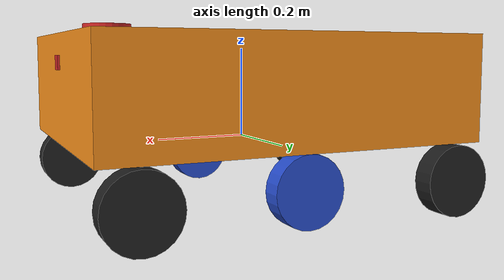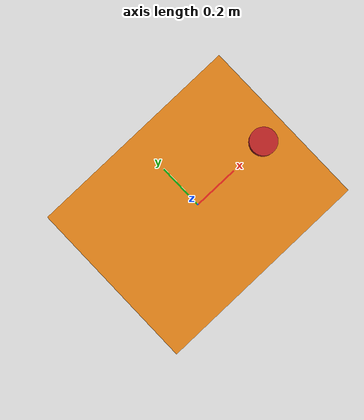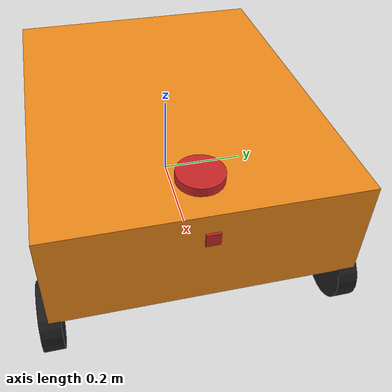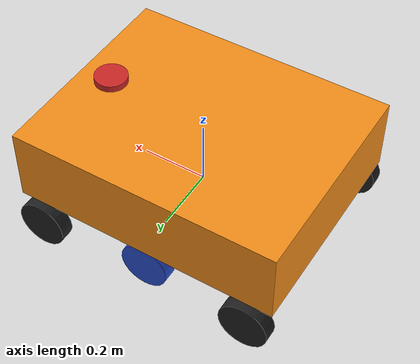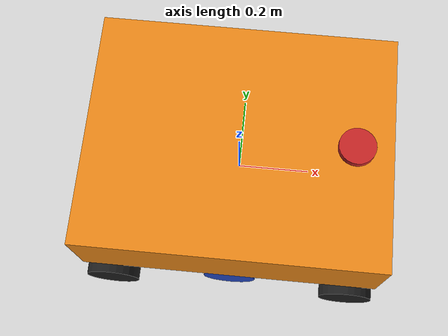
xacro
<?xml version="1.0"?>
<robot xmlns:xacro="http://www.ros.org/wiki/xacro" name="robot">

    <xacro:include filename="robot_core.xacro" />

    <xacro:arg name="use_ros2_control" default="true" />
    <xacro:arg name="sim_mode" default="false" />

    <xacro:if value="$(arg use_ros2_control)">
        <xacro:include filename="ros2_control.xacro" />
    </xacro:if>
    <xacro:unless value="$(arg use_ros2_control)">
        <xacro:include filename="gazebo_control.xacro" />
    </xacro:unless>

    <xacro:include filename="lidar.xacro" />
    <xacro:include filename="camera.xacro" />

</robot>

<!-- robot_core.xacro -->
<robot xmlns:xacro="http://www.ros.org/wiki/xacro">

    <xacro:include filename="colors.xacro" />
    <xacro:include filename="inertial_macros.xacro" />

    <!-- BASE LINK -->

    <link name="base_link">

    </link>

    <!-- BASE_FOOTPRINT LINK -->

    <joint name="base_footprint_joint" type="fixed">
        <parent link="base_link" />
        <child link="base_footprint" />
        <origin xyz="0 0 0" rpy="0 0 0" />
    </joint>

    <link name="base_footprint">
    </link>

    <!-- CHASSIS LINK -->

    <joint name="chassis_joint" type="fixed">
        <parent link="base_link" />
        <child link="chassis" />
        <origin xyz="-0.41 0 0" />
    </joint>

    <link name="chassis">
        <visual>
            <origin xyz="0.41 0 0.115" />
            <geometry>
                <box size="0.82 0.65 0.23" />
            </geometry>
            <material name="orange" />
        </visual>
        <collision>
            <origin xyz="0.41 0 0.115" />
            <geometry>
                <box size="0.82 0.65 0.23" />
            </geometry>
        </collision>
        <xacro:inertial_box mass="0.5" x="0.3" y="0.3" z="0.15">
            <origin xyz="0.15 0 0.075" rpy="0 0 0" />
        </xacro:inertial_box>
    </link>

    <gazebo reference="chassis">
        <material>Gazebo/Orange</material>
    </gazebo>

    <!-- LEFT WHEEL LINK -->

    <joint name="left_wheel_joint" type="continuous">
        <parent link="base_link" />
        <child link="left_wheel" />
        <origin xyz="0 0.295 -0.075" rpy="-${pi/2} 0 0" />
        <axis xyz="0 0 1" />
    </joint>

    <link name="left_wheel">
        <visual>
            <geometry>
                <cylinder radius="0.074" length="0.045" />
            </geometry>
            <material name="blue" />
        </visual>
        <collision>
            <geometry>
                <sphere radius="0.074" />
            </geometry>
        </collision>
        <xacro:inertial_cylinder mass="0.1" length="0.045" radius="0.074">
            <origin xyz="0 0 0" rpy="0 0 0" />
        </xacro:inertial_cylinder>
    </link>

    <gazebo reference="left_wheel">
        <material>Gazebo/Blue</material>
    </gazebo>

    <!-- RIGHT WHEEL LINK -->

    <joint name="right_wheel_joint" type="continuous">
        <parent link="base_link" />
        <child link="right_wheel" />
        <origin xyz="0 -0.295 -0.075" rpy="${pi/2} 0 0" />
        <axis xyz="0 0 -1" />
    </joint>

    <link name="right_wheel">
        <visual>
            <geometry>
                <cylinder radius="0.074" length="0.045" />
            </geometry>
            <material name="blue" />
        </visual>
        <collision>
            <geometry>
                <sphere radius="0.074" />
            </geometry>
        </collision>
        <xacro:inertial_cylinder mass="0.1" length="0.045" radius="0.074">
            <origin xyz="0 0 0" rpy="0 0 0" />
        </xacro:inertial_cylinder>
    </link>

    <gazebo reference="right_wheel">
        <material>Gazebo/Blue</material>
    </gazebo>

    <!-- CASTER WHEEL LINK FRONT LEFT-->

    <joint name="caster_wheel_joint_FL" type="fixed">
        <parent link="chassis" />
        <child link="caster_wheel_fl" />
        <origin xyz="0.745 0.325 -0.075" rpy="-${pi/2} 0 0" />
    </joint>

    <link name="caster_wheel_fl">
        <visual>
            <geometry>
                <cylinder radius="0.075" length="0.045" />
            </geometry>
            <material name="black" />
        </visual>
        <collision>
            <geometry>
                <sphere radius="0.075" />
            </geometry>
        </collision>
        <xacro:inertial_cylinder mass="0.1" length="0.045" radius="0.075">
            <origin xyz="0 0 0" rpy="0 0 0" />
        </xacro:inertial_cylinder>
    </link>

    <gazebo reference="caster_wheel_fl">
        <material>Gazebo/Black</material>
        <mu1 value="0.001" />
        <mu2 value="0.001" />
    </gazebo>

    <!-- CASTER WHEEL LINK FRONT RIGHT-->

    <joint name="caster_wheel_joint_FR" type="fixed">
        <parent link="chassis" />
        <child link="caster_wheel_fr" />
        <origin xyz="0.745 -0.325 -0.075" rpy="${pi/2} 0 0" />
    </joint>

    <link name="caster_wheel_fr">
        <visual>
            <geometry>
                <cylinder radius="0.075" length="0.045" />
            </geometry>
            <material name="black" />
        </visual>
        <collision>
            <geometry>
                <sphere radius="0.075" />
            </geometry>
        </collision>
        <xacro:inertial_cylinder mass="0.1" length="0.045" radius="0.075">
            <origin xyz="0 0 0" rpy="0 0 0" />
        </xacro:inertial_cylinder>
    </link>

    <gazebo reference="caster_wheel_fr">
        <material>Gazebo/Black</material>
        <mu1 value="0.001" />
        <mu2 value="0.001" />
    </gazebo>

    <!-- CASTER WHEEL LINK REAR RIGHT-->

    <joint name="caster_wheel_joint_RR" type="fixed">
        <parent link="chassis" />
        <child link="caster_wheel_rr" />
        <origin xyz="0.075 -0.325 -0.075" rpy="${pi/2} 0 0" />
    </joint>

    <link name="caster_wheel_rr">
        <visual>
            <geometry>
                <cylinder radius="0.075" length="0.045" />
            </geometry>
            <material name="black" />
        </visual>
        <collision>
            <geometry>
                <sphere radius="0.075" />
            </geometry>
        </collision>
        <xacro:inertial_cylinder mass="0.1" length="0.045" radius="0.075">
            <origin xyz="0 0 0" rpy="0 0 0" />
        </xacro:inertial_cylinder>
    </link>

    <gazebo reference="caster_wheel_rr">
        <material>Gazebo/Black</material>
        <mu1 value="0.001" />
        <mu2 value="0.001" />
    </gazebo>

    <!-- CASTER WHEEL LINK REAR LEFT-->

    <joint name="caster_wheel_joint_RL" type="fixed">
        <parent link="chassis" />
        <child link="caster_wheel_rl" />
        <origin xyz="0.075 0.325 -0.075" rpy="-${pi/2} 0 0" />
    </joint>

    <link name="caster_wheel_rl">
        <visual>
            <geometry>
                <cylinder radius="0.075" length="0.045" />
            </geometry>
            <material name="black" />
        </visual>
        <collision>
            <geometry>
                <sphere radius="0.075" />
            </geometry>
        </collision>
        <xacro:inertial_cylinder mass="0.1" length="0.045" radius="0.075">
            <origin xyz="0 0 0" rpy="0 0 0" />
        </xacro:inertial_cylinder>
    </link>

    <gazebo reference="caster_wheel_rl">
        <material>Gazebo/Black</material>
        <mu1 value="0.001" />
        <mu2 value="0.001" />
    </gazebo>

</robot>

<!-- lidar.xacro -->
<robot xmlns:xacro="http://www.ros.org/wiki/xacro">

    <!-- REAR LIDAR-->

    <!-- FRONT LIDAR-->

    <joint name="laser_joint_f" type="fixed">
        <parent link="chassis" />
        <child link="laser_frame" />
        <origin xyz="0.72 0 0.23" rpy="0 0 0" />
    </joint>

    <link name="laser_frame">
        <visual>
            <geometry>
                <cylinder radius="0.05" length="0.04" />
            </geometry>
            <material name="red" />
        </visual>
        <collision>
            <geometry>
                <cylinder radius="0.05" length="0.04" />
            </geometry>
        </collision>
        <xacro:inertial_cylinder mass="0.1" length="0.04" radius="0.05">
            <origin xyz="0 0 0" rpy="0 0 0" />
        </xacro:inertial_cylinder>
    </link>

    <gazebo reference="laser_frame">
        <material>Gazebo/Red</material>

        <sensor name="laser_f" type="ray">
            <pose> 0 0 0 0 0 0 </pose>
            <visualize>false</visualize>
            <update_rate>10</update_rate>
            <ray>
                <scan>
                    <horizontal>
                        <samples>180</samples>
                        <min_angle>-2</min_angle>
                        <max_angle>2</max_angle>
                    </horizontal>
                </scan>
                <range>
                    <min>0.4</min>
                    <max>12</max>
                </range>
            </ray>
            <plugin name="laser_controller_f" filename="libgazebo_ros_ray_sensor.so">
                <ros>
                    <argument>~/out:=scan</argument>
                </ros>
                <output_type>sensor_msgs/LaserScan</output_type>
                <frame_name>laser_frame</frame_name>
            </plugin>
        </sensor>
    </gazebo>

</robot>

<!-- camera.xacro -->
<robot xmlns:xacro="http://www.ros.org/wiki/xacro">

    <joint name="camera_joint" type="fixed">
        <parent link="chassis" />
        <child link="camera_link" />
        <origin xyz="0.82 0 0.17" rpy="0 0 0" />
    </joint>

    <link name="camera_link">
        <visual>
            <geometry>
                <box size="0.010 0.03 0.03" />
            </geometry>
            <material name="red" />
        </visual>
    </link>

    <joint name="camera_optical_joint" type="fixed">
        <parent link="camera_link" />
        <child link="camera_link_optical" />
        <origin xyz="0 0 0" rpy="${-pi/2} 0 ${-pi/2}" />
    </joint>

    <link name="camera_link_optical"></link>

    <gazebo reference="camera_link">
        <material>Gazebo/Red</material>

        <sensor name="camera" type="camera">
            <pose> 0 0 0 0 0 0 </pose>
            <visualize>true</visualize>
            <update_rate>10</update_rate>
            <camera>
                <horizontal_fov>1.089</horizontal_fov>
                <image>
                    <format>R8G8B8</format>
                    <width>640</width>
                    <height>480</height>
                </image>
                <clip>
                    <near>0.05</near>
                    <far>8.0</far>
                </clip>
            </camera>
            <plugin name="camera_controller" filename="libgazebo_ros_camera.so">
                <frame_name>camera_link_optical</frame_name>
            </plugin>
        </sensor>
    </gazebo>

</robot>
